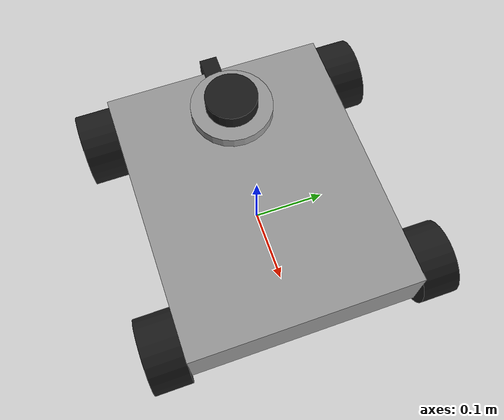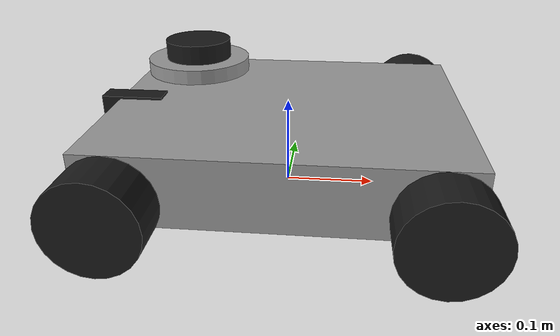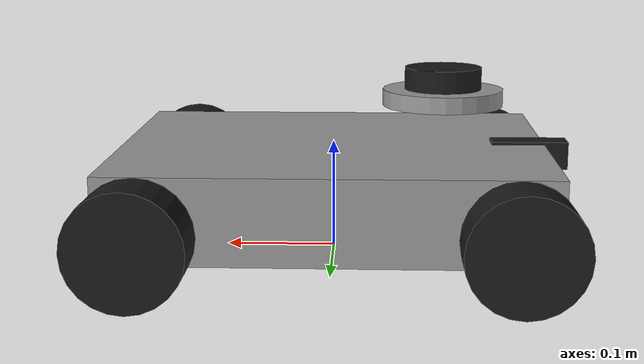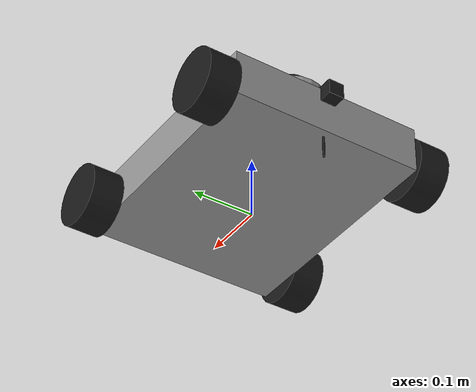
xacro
<?xml version="1.0"?>
<robot xmlns:xacro="http://ros.org/wiki/xacro" name="mecanum_bot">

  <!-- 載入底盤結構與控制設定 -->
<xacro:arg name="use_ros2_control" default="true"/>
<xacro:arg name="controller_config_path" default="$(find my_robot)/config/mecanum_controller.yaml"/>

<xacro:include filename="mecanum_base.xacro"/>
<xacro:include filename="camera.xacro" />
<xacro:include filename="lidar.xacro" />

<xacro:if value="$(arg use_ros2_control)">
  <xacro:include filename="ros2_control.xacro"/>
</xacro:if>
<xacro:unless value="$(arg use_ros2_control)">
  <xacro:include filename="gazebo_control.xacro"/>
</xacro:unless>

</robot>

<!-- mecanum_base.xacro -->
<robot xmlns:xacro="http://ros.org/wiki/xacro" name="mecanum_bot">

  <xacro:include filename="mecanum_wheel_inertial.xacro"/>

  <!-- 顏色材質 -->
  <material name="gray"><color rgba="0.6 0.6 0.6 1.0"/></material>
  <material name="black"><color rgba="0.1 0.1 0.1 1.0"/></material>

  <!-- 底盤參數 -->
  <xacro:property name="chassis_length" value="0.3865"/>
  <xacro:property name="chassis_width"  value="0.3115"/>
  <xacro:property name="chassis_height" value="0.075"/>
  <xacro:property name="chassis_z"      value="${0.025 + 0.075 / 2}"/>

  <!-- 輪子參數 -->
  <xacro:property name="wheel_radius" value="0.05"/>
  <xacro:property name="wheel_width"  value="0.05"/>
  <xacro:property name="wheel_mass"   value="0.3875"/>

  <!-- 輪子位置 -->
  <xacro:property name="wheel_x_offset" value="0.157"/>
  <xacro:property name="wheel_y_offset" value="0.1805"/>

  <!-- ✅ odom → base_link（為 RViz 提供 TF） -->
  <link name="odom"/>
  <joint name="odom_to_base" type="fixed">
    <parent link="odom"/>
    <child link="base_link"/>
    <origin xyz="0 0 0" rpy="0 0 3.1416"/>
  </joint>

  <!-- base_link & chassis -->
  <link name="base_link"/>
  <joint name="chassis_joint" type="fixed">
    <parent link="base_link"/>
    <child link="chassis"/>
    <origin xyz="0 0 0"/>
  </joint>

  <!-- 底盤 -->
  <link name="chassis">
    <visual>
      <geometry>
        <box size="${chassis_length} ${chassis_width} ${chassis_height}"/>
      </geometry>
      <origin xyz="0 0 ${chassis_z}"/>
      <material name="gray"/>
    </visual>
    <collision>
      <geometry>
        <box size="${chassis_length} ${chassis_width} ${chassis_height}"/>
      </geometry>
      <origin xyz="0 0 ${chassis_z}"/>
    </collision>
    <inertial>
      <mass value="2.0"/>
      <origin xyz="0 0 ${chassis_z}"/>
      <inertia ixx="0.1" iyy="0.1" izz="0.1" ixy="0" ixz="0" iyz="0"/>
    </inertial>
  </link>

  <gazebo reference="chassis">
    <material>Gazebo/Gray</material>
  </gazebo>

  <!-- 🛞 Mecanum 輪 Macro（修正前進方向） -->
  <xacro:macro name="mecanum_wheel" params="name x y rpy_sign axis_sign">
    <link name="${name}_link">
      <visual>
        <geometry>
          <cylinder length="${wheel_width}" radius="${wheel_radius}"/>
        </geometry>
        <material name="black"/>
      </visual>
      <collision>
        <geometry>
          <cylinder length="${wheel_width}" radius="${wheel_radius}"/>
        </geometry>
      </collision>
      <xacro:mecanum_wheel_inertial mass="${wheel_mass}" radius="${wheel_radius}" length="${wheel_width}"/>
    </link>

    <joint name="${name}_joint" type="continuous">
      <parent link="chassis"/>
      <child link="${name}_link"/>
      <origin xyz="${x} ${y} 0.05" rpy="${rpy_sign} 0 0"/>
      <axis xyz="0 0 ${axis_sign}"/>
      <limit effort="1.5" velocity="40.0"/>
    </joint>

    <gazebo reference="${name}_link">
      <material>Gazebo/Black</material>
    </gazebo>
  </xacro:macro>

  <!-- ✅ 四個輪子設定（修正前進方向） -->
  <xacro:mecanum_wheel name="front_left_wheel"  x="${wheel_x_offset}"  y="${wheel_y_offset}"  rpy_sign="-1.5708" axis_sign="1"/>
  <xacro:mecanum_wheel name="front_right_wheel" x="${wheel_x_offset}"  y="-${wheel_y_offset}" rpy_sign="1.5708"  axis_sign="-1"/>
  <xacro:mecanum_wheel name="rear_left_wheel"   x="-${wheel_x_offset}" y="${wheel_y_offset}"  rpy_sign="-1.5708" axis_sign="1"/>
  <xacro:mecanum_wheel name="rear_right_wheel"  x="-${wheel_x_offset}" y="-${wheel_y_offset}" rpy_sign="1.5708"  axis_sign="-1"/>

</robot>

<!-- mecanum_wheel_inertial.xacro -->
<robot xmlns:xacro="http://ros.org/wiki/xacro">

  <xacro:macro name="mecanum_wheel_inertial" params="mass radius length">
    <inertial>
      <mass value="${mass}"/>
      <origin xyz="0 0 0" rpy="0 0 0"/>
      <inertia
        ixx="${(1/12)*mass*(3*radius*radius + length*length)}"
        iyy="${(1/12)*mass*(3*radius*radius + length*length)}"
        izz="${0.5*mass*radius*radius}"
        ixy="0.0" ixz="0.0" iyz="0.0"/>
    </inertial>
  </xacro:macro>

</robot>

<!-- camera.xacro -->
<robot xmlns:xacro="http://ros.org/wiki/xacro">

  <!-- 相機固定在底盤最前方中心 -->
  <joint name="camera_joint" type="fixed">
    <parent link="chassis"/>
    <child link="camera_link"/>
    <origin xyz="0.18 0 0.09" rpy="0 0 0"/>
  </joint>

  <!-- 相機外殼模型 -->
  <link name="camera_link">
    <visual>
      <geometry>
        <box size="0.07 0.025 0.025"/>
      </geometry>
      <material name="black"/>
    </visual>
    <visual>
      <origin xyz="0 0 -0.05"/>
      <geometry>
        <cylinder radius="0.002" length="0.1"/>
      </geometry>
      <material name="black"/>
    </visual>
    <collision>
      <geometry>
        <box size="0.07 0.025 0.025"/>
      </geometry>
    </collision>
    <inertial>
      <mass value="0.162"/>
      <origin xyz="0 0 0" rpy="0 0 0"/>
      <inertia ixx="1e-5" ixy="0" ixz="0"
               iyy="1e-5" iyz="0"
               izz="1e-5"/>
    </inertial>
  </link>

  <!-- 相機 optical frame（TF 正確朝前） -->
  <joint name="camera_optical_joint" type="fixed">
    <parent link="camera_link"/>
    <child link="camera_link_optical"/>
    <origin xyz="0 0 0" rpy="${-pi/2} 0 ${-pi/2}"/>
  </joint>

  <link name="camera_link_optical"/>

  <!-- Gazebo 相機 sensor 設定（改成範例風格） -->
  <gazebo reference="camera_link">
    <material>Gazebo/Black</material>
    <sensor name="camera" type="camera">
      <pose>0 0 0 0 0 0</pose>
      <visualize>true</visualize>
      <update_rate>10</update_rate>
      <camera>
        <horizontal_fov>1.089</horizontal_fov>
        <image>
          <format>R8G8B8</format>
          <width>640</width>
          <height>480</height>
        </image>
        <clip>
          <near>0.05</near>
          <far>8.0</far>
        </clip>
      </camera>
      <plugin name="camera_controller" filename="libgazebo_ros_camera.so">
        <frame_name>camera_link_optical</frame_name>
      </plugin>
    </sensor>
  </gazebo>

</robot>

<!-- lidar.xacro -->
<robot xmlns:xacro="http://www.ros.org/wiki/xacro">

  <!-- 固定 Joint：將雷達安裝在 chassis 上 -->
  <joint name="laser_joint" type="fixed">
    <parent link="chassis"/>
    <child link="laser_frame"/>
    <origin xyz="0.10 0 0.15" rpy="0 0 0"/> <!-- 離相機約 4cm、加高 -->
  </joint>

  <!-- 雷達本體：模擬 RPLIDAR A1 外觀 -->
  <link name="laser_frame">
    <!-- 上方旋轉雷射頭 -->
    <visual>
      <geometry>
        <cylinder radius="0.035" length="0.02"/>
      </geometry>
      <origin xyz="0 0 0.01" rpy="0 0 0"/>
      <material name="black"/>
    </visual>

    <!-- 下方圓形底座 -->
    <visual>
      <geometry>
        <cylinder radius="0.055" length="0.015"/>
      </geometry>
      <origin xyz="0 0 -0.0075" rpy="0 0 0"/>
      <material name="gray"/>
    </visual>

    <collision>
      <geometry>
        <cylinder radius="0.055" length="0.035"/>
      </geometry>
    </collision>

    <inertial>
      <mass value="0.2"/>
      <origin xyz="0 0 0" rpy="0 0 0"/>
      <inertia ixx="1e-5" ixy="0" ixz="0"
               iyy="1e-5" iyz="0"
               izz="1e-5"/>
    </inertial>
  </link>

  <!-- Gazebo 模擬雷射雷達 sensor 設定 -->
  <gazebo reference="laser_frame">
    <material>Gazebo/Black</material>
    <sensor name="rplidar_a1" type="ray">
      <pose>0 0 0 0 0 0</pose>
      <visualize>true</visualize>
      <update_rate>10</update_rate>
      <ray>
        <scan>
          <horizontal>
            <samples>360</samples>
            <min_angle>-3.14</min_angle>
            <max_angle>3.14</max_angle>
          </horizontal>
        </scan>
        <range>
          <min>0.12</min>
          <max>12.0</max>
        </range>
      </ray>
      <plugin name="rplidar_plugin" filename="libgazebo_ros_ray_sensor.so">
        <ros>
          <argument>~/out:=scan</argument>
        </ros>
        <output_type>sensor_msgs/LaserScan</output_type>
        <frame_name>laser_frame</frame_name>
      </plugin>
    </sensor>
  </gazebo>

</robot>
